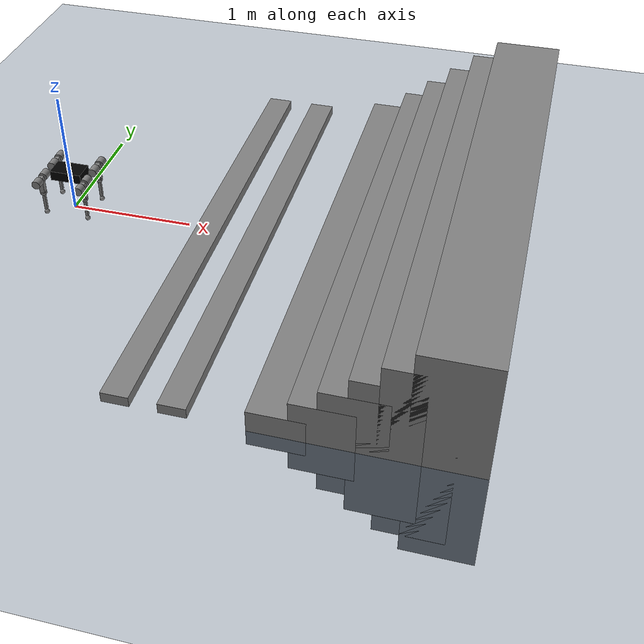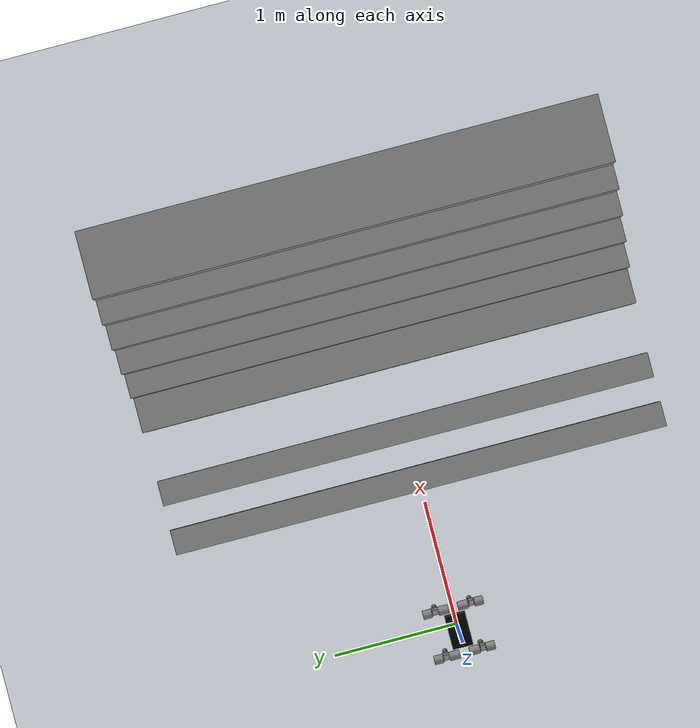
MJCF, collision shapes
<mujoco model="dogo scene">
  <include file="dogo.xml"/>

  <statistic center="0 0 0.1" extent="0.8"/>

  <visual>
    <headlight diffuse="0.6 0.6 0.6" ambient="0.3 0.3 0.3" specular="0 0 0"/>
    <rgba haze="0.15 0.25 0.35 1"/>
    <global azimuth="-130" elevation="-20"/>
  </visual>

  <asset>
    <texture type="skybox" builtin="gradient" rgb1="0.3 0.5 0.7" rgb2="0 0 0" width="512" height="3072"/>
    <texture type="2d" name="groundplane" builtin="checker" mark="edge" rgb1="0.2 0.3 0.4" rgb2="0.1 0.2 0.3"
      markrgb="0.8 0.8 0.8" width="300" height="300"/>
    <material name="groundplane" texture="groundplane" texuniform="true" texrepeat="5 5" reflectance="0.2"/>
  </asset>

  <worldbody>
    <light pos="0 0 1.5" dir="0 0 -1" directional="true"/>
    <geom name="floor" size="0 0 0.05" type="plane" material="groundplane"/>

    <geom pos="1.2 0 0.04" type="box"  size="0.1 2 0.04" quat="1.0 0 0 0"/>
    <geom pos="1.6 0 0.04" type="box"  size="0.1 2 0.04" quat="1.0 0 0 0"/>

    <geom pos="2.3 0 0.02" type="box"  size="0.2 2 0.15" quat="1.0 0 0 0"/>
    <geom pos="2.6 0 0.02" type="box"  size="0.22 2 0.3" quat="1.0 0 0 0"/>
    <geom pos="2.8 0 0.02" type="box"  size="0.23 2 0.45" quat="1.0 0 0 0"/>
    <geom pos="3 0 0.02" type="box"  size="0.24 2 0.6" quat="1.0 0 0 0"/>
    <geom pos="3.2 0 0.02" type="box"  size="0.25 2 0.75" quat="1.0 0 0 0"/>
    <geom pos="3.4 0 0.02" type="box"  size="0.26 2 0.9" quat="1.0 0 0 0"/>
  </worldbody>
</mujoco>

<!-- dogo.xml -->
<mujoco model="dogo">
  <compiler angle="radian" meshdir="assets" autolimits="true" />

  <option cone="elliptic" impratio="100" />

  <default>
    <default class="dogo">
      <geom friction="0.4" margin="0.001" condim="1"/>
      <joint axis="0 1 0" damping="0.1" armature="0.01" frictionloss="0.2"/>
      <motor ctrlrange="-23.7 23.7"/>
      <default class="abduction">
        <joint axis="0 1 0" range="-1.570796326795 1.570796326795"/>
      </default>
      <default class="hip">
          <joint axis="0 0 1" range="-3.14 3.14"/>
      </default>
      <default class="knee">
        <default class="left_knee">
          <joint axis="0 0 1" range="-2.5307274153919 -0.83776"/>
        </default>
        <default class="right_knee">
          <joint axis="0 0 1" range="0.83776 2.5307274153919 "/>
        </default>
      </default>
      <default class="visual">
        <geom type="mesh" contype="0" conaffinity="0" group="2"/>
      </default>
      <default class="collision">
        <geom group="3"/>
        <default class="foot">
          <geom size="0.02" type="sphere" priority="1" condim="6"
            friction="0.68 0.02 0.1"/>
        </default>
      </default>
    </default>
  </default>

  <asset>
    <material name="metal" rgba=".9 .95 .95 1" />
    <material name="black" rgba="0 0 0 1" />
    <material name="white" rgba="1 1 1 1" />
    <material name="gray" rgba="0.671705 0.692426 0.774270 1" />

    <mesh file="base_link.STL" />
    <mesh file="LEG11.STL" />
    <mesh file="LEG12.STL" />
    <mesh file="LEG13.STL" />
    <mesh file="LEG21.STL" />
    <mesh file="LEG22.STL" />
    <mesh file="LEG23.STL" />
    <mesh file="LEG31.STL" />
    <mesh file="LEG32.STL" />
    <mesh file="LEG33.STL" />
    <mesh file="LEG41.STL" />
    <mesh file="LEG42.STL" />
    <mesh file="LEG43.STL" />
    <mesh file="foot.obj" />
  </asset>

  <worldbody>
    <body name="base_link" pos="0 0 0.335" childclass="dogo">
      <inertial pos="0 0 0"
        mass="6.921"
        diaginertia="0.107027 0.0980771 0.0244531" />
      <freejoint />
      <geom mesh="base_link" material="gray" class="visual" />
      <geom size="0.13 0.08 0.04" type="box" material="black" class="collision" />
      <site name="imu" pos="-0.02557 0 0.04232" />

      <body name="FL_hip" pos="0.18 0.08 0" euler="-1.57079633 0 -1.57079633">
        <inertial pos="-0.000000 -0.003703 0.004706" quat="0.2357022 0.4714045 -0.4714045 -0.7071069"
          mass="0.30135684166799"
          diaginertia="0.00031237713005535 0.00027822467993044 0.00020168338836961" />
        <joint name="FL_hip_joint" class="abduction" />
        <geom mesh="LEG11" material="metal" class="visual" />
        <geom size="0.035 0.04" pos="0 0 -0.005" type="cylinder" class="collision" />

        <body name="FL_thigh" pos="0 0 -0.002" euler="0 0 -3.14159265" >
          <inertial pos="0.019829 -0.000000 0.095155" quat="-0.2358914 0.2358914 0.2358914 -0.9127243"
            mass="0.47454500868766"
            diaginertia="0.00074414565483716 0.0012540229261377 0.000758753104644" />
          <joint name="FL_thigh_joint" class="hip" />
          <geom mesh="LEG12" material="gray" class="visual" />
          <geom size="0.02 0.02 0.07" pos="0.05 0 0.065" euler="0 -1.57079633 0"
            type="box" class="collision" />
          <geom size="0.035 0.035" pos="0.0 0 0.125" type="cylinder" class="collision" />

          <body name="FL_calf" pos="0.128 0 0.060">
            <inertial pos="0.085586 -0.000000 0.002392"
              quat="-0.2358914 0.2358914 0.2358914 -0.9127243"
              mass="0.15980953360372"
              diaginertia="2.4624100003828e-05 0.00077656913624133 0.0007860837906668" />
            <joint name="FL_calf_joint" class="left_knee" />
            <geom mesh="LEG13" material="gray" class="visual" />
            <geom size="0.025 0.0115" pos="0 0 0.0016"
              type="cylinder" class="collision" />
            <geom size="0.08 0.011 0.011" pos="0.08 0 0.0016"
              type="box" class="collision" />
            <body name="FL_foot" pos="0.187 0 0.002" >
              <geom name="FL" class="foot" pos="0.0 0 0.0008" />
            </body>
          </body>
        </body>
      </body>

      <body name="FR_hip" pos="0.18 -0.08 0" euler="1.57079633 0 1.57079633">
        <inertial pos="0.000000 -0.003703 -0.004706" quat="0.2357022 0.4714045 -0.4714045 -0.7071069"
          mass="0.30135684166799"
          diaginertia="0.00031237713005535 0.00027822467993044 0.00020168338836961" />
        <joint name="FR_hip_joint" class="abduction" />
        <geom mesh="LEG21" material="metal" class="visual" />
        <geom size="0.035 0.04" pos="0 0 0"  type="cylinder" class="collision" />

        <body name="FR_thigh" pos="0 0 0.002" euler="0 0 3.14159265">
          <inertial pos="0.019829 -0.000000 0.095155" quat="-0.2358914 0.2358914 -0.2358914 -0.9127243"
            mass="0.47454500868766"
            diaginertia="0.00074414565483716 0.0012540229261377 0.000758753104644" />
          <joint name="FR_thigh_joint" class="hip" />
          <geom mesh="LEG22" material="gray" class="visual" />
          <geom size="0.02 0.02 0.07" pos="0.05 0 0.065" euler="0 -1.57079633 0" type="box" class="collision" />
          <geom size="0.035 0.035" pos="0.0 0 0.125" type="cylinder" class="collision" />

          <body name="FR_calf" pos="0.128 0 0.065">
            <inertial pos="0.085586 0.000000 -0.002392"
              quat="0.2358914 0.2358914 -0.2358914 -0.9127243"
              mass="0.15980953360372"
              diaginertia="2.4624100003828e-05 0.00077656913624133 0.0007860837906668" />
            <joint name="FR_calf_joint" class="right_knee" />
            <geom mesh="LEG23" material="gray" class="visual" />
            <geom size="0.025 0.0115" pos="0 0 -0.0016"
              type="cylinder" class="collision" />
            <geom size="0.08 0.011 0.011" pos="0.08 0 -0.0016"
              type="box" class="collision" />
            <body name="FR_foot" pos="0.187 0 -0.002" >
              <geom name="FR" class="foot" pos="0.0 0 -0.0008"/>
            </body>
          </body>
        </body>
      </body>

      <body name="RL_hip" pos="-0.18 0.08 0" euler="-1.57079633 0 -1.57079633">
        <inertial pos="-0.000000 -0.003703 -0.004706" quat="0.2357022 0.4714045 0.4714045 -0.7071069"
          mass="0.30135684166799"
          diaginertia="0.00031237713005535 0.00027822467993044 0.00020168338836961" />
        <joint name="RL_hip_joint" class="abduction" />
        <geom mesh="LEG31" material="metal" class="visual" />
        <geom size="0.035 0.04" pos="0 0 0"  type="cylinder" class="collision" />

        <body name="RL_thigh" pos="0 0 0.002" euler="0 0 3.14159265">
          <inertial pos="0.019829 -0.000000 0.095155" quat="-0.2358914 0.2358914 0.2358914 -0.9127243"
            mass="0.47454500868766"
            diaginertia="0.00074414565483715 0.0012540229261377 0.000758753104644" />
          <joint name="RL_thigh_joint" class="hip" />
          <geom mesh="LEG32" material="gray" class="visual" />
          <geom size="0.02 0.02 0.07" pos="0.05 0 0.065" euler="0 -1.57079633 0" type="box" class="collision" />
          <geom size="0.035 0.035" pos="0.0 0 0.125" type="cylinder" class="collision" />

          <body name="RL_calf" pos="0.128 0 0.065">
            <inertial pos="0.085586 -0.000000 -0.000000"
              quat="-0.2358914 0.2358914 0.2358914 -0.9127243"
              mass="0.15980953360372"
              diaginertia="2.4624100003828e-05 0.00077656913624133 0.0007860837906668" />
            <joint name="RL_calf_joint" class="left_knee" />
            <geom mesh="LEG33" material="gray" class="visual" />
            <geom size="0.025 0.0115" pos="0 0 -0.0016"
              type="cylinder" class="collision" />
            <geom size="0.08 0.011 0.011" pos="0.08 0 -0.0016"
              type="box" class="collision" />
            <body name="RL_foot" pos="0.187 0 -0.002" >
              <geom name="RL" class="foot" pos="0.0 0 0.0015"/>
            </body>
          </body>
        </body>
      </body>

      <body name="RR_hip" pos="-0.18 -0.08 0" euler="1.57079633 0 -1.57079633">
        <inertial pos="0.000000 -0.003703 -0.004706" quat="0.2357022 0.4714045 -0.4714045 -0.7071069"
          mass="0.30135684166799"
          diaginertia="0.00031237713005535 0.00027822467993044 0.00020168338836961" />
        <joint name="RR_hip_joint" class="abduction" />
        <geom mesh="LEG21" material="metal" class="visual" />
        <geom size="0.035 0.04" pos="0 0 0"  type="cylinder" class="collision" />

        <body name="RR_thigh" pos="0 0 0.002" euler="0 0 0">
          <inertial pos="0.019829 -0.000000 0.095155" quat="-0.2358914 0.2358914 -0.2358914 -0.9127243"
            mass="0.47454500868766"
            diaginertia="0.00074414565483716 0.0012540229261377 0.000758753104644" />
          <joint name="RR_thigh_joint" class="hip" />
          <geom mesh="LEG22" material="gray" class="visual" />
          <geom size="0.02 0.02 0.07" pos="0.05 0 0.065" euler="0 -1.57079633 0" type="box" class="collision" />
          <geom size="0.035 0.035" pos="0.0 0 0.125" type="cylinder" class="collision" />

          <body name="RR_calf" pos="0.128 0 0.065">
            <inertial pos="0.085586 0.000000 -0.002392"
              quat="0.2358914 0.2358914 -0.2358914 -0.9127243"
              mass="0.15980953360372"
              diaginertia="2.4624100003828e-05 0.00077656913624133 0.0007860837906668" />
            <joint name="RR_calf_joint" class="right_knee" />
            <geom mesh="LEG23" material="gray" class="visual" />
            <geom size="0.025 0.0115" pos="0 0 -0.0016"
              type="cylinder" class="collision" />
            <geom size="0.08 0.011 0.011" pos="0.08 0 -0.0016"
              type="box" class="collision" />
            <body name="RR_foot" pos="0.187 0 -0.002" >
              <geom name="RR" class="foot" pos="0.0 0 -0.0008"/>
            </body>
          </body>
        </body>
      </body>
    </body>
  </worldbody>

  <actuator>
    <motor class="abduction" name="FR_hip" joint="FR_hip_joint" />
    <motor class="hip" name="FR_thigh" joint="FR_thigh_joint" />
    <motor class="knee" name="FR_calf" joint="FR_calf_joint" />
    <motor class="abduction" name="FL_hip" joint="FL_hip_joint" />
    <motor class="hip" name="FL_thigh" joint="FL_thigh_joint" />
    <motor class="knee" name="FL_calf" joint="FL_calf_joint" />
    <motor class="abduction" name="RR_hip" joint="RR_hip_joint" />
    <motor class="hip" name="RR_thigh" joint="RR_thigh_joint" />
    <motor class="knee" name="RR_calf" joint="RR_calf_joint" />
    <motor class="abduction" name="RL_hip" joint="RL_hip_joint" />
    <motor class="hip" name="RL_thigh" joint="RL_thigh_joint" />
    <motor class="knee" name="RL_calf" joint="RL_calf_joint" />
  </actuator>

  <sensor>
    <jointpos name="FR_hip_pos" joint="FR_hip_joint" />
    <jointpos name="FR_thigh_pos" joint="FR_thigh_joint" />
    <jointpos name="FR_calf_pos" joint="FR_calf_joint" />
    <jointpos name="FL_hip_pos" joint="FL_hip_joint" />
    <jointpos name="FL_thigh_pos" joint="FL_thigh_joint" />
    <jointpos name="FL_calf_pos" joint="FL_calf_joint" />
    <jointpos name="RR_hip_pos" joint="RR_hip_joint" />
    <jointpos name="RR_thigh_pos" joint="RR_thigh_joint" />
    <jointpos name="RR_calf_pos" joint="RR_calf_joint" />
    <jointpos name="RL_hip_pos" joint="RL_hip_joint" />
    <jointpos name="RL_thigh_pos" joint="RL_thigh_joint" />
    <jointpos name="RL_calf_pos" joint="RL_calf_joint" />

    <jointvel name="FR_hip_vel" joint="FR_hip_joint" />
    <jointvel name="FR_thigh_vel" joint="FR_thigh_joint" />
    <jointvel name="FR_calf_vel" joint="FR_calf_joint" />
    <jointvel name="FL_hip_vel" joint="FL_hip_joint" />
    <jointvel name="FL_thigh_vel" joint="FL_thigh_joint" />
    <jointvel name="FL_calf_vel" joint="FL_calf_joint" />
    <jointvel name="RR_hip_vel" joint="RR_hip_joint" />
    <jointvel name="RR_thigh_vel" joint="RR_thigh_joint" />
    <jointvel name="RR_calf_vel" joint="RR_calf_joint" />
    <jointvel name="RL_hip_vel" joint="RL_hip_joint" />
    <jointvel name="RL_thigh_vel" joint="RL_thigh_joint" />
    <jointvel name="RL_calf_vel" joint="RL_calf_joint" />

    <jointactuatorfrc name="FR_hip_torque" joint="FR_hip_joint" noise="0.01" />
    <jointactuatorfrc name="FR_thigh_torque" joint="FR_thigh_joint" noise="0.01" />
    <jointactuatorfrc name="FR_calf_torque" joint="FR_calf_joint" noise="0.01" />
    <jointactuatorfrc name="FL_hip_torque" joint="FL_hip_joint" noise="0.01" />
    <jointactuatorfrc name="FL_thigh_torque" joint="FL_thigh_joint" noise="0.01" />
    <jointactuatorfrc name="FL_calf_torque" joint="FL_calf_joint" noise="0.01" />
    <jointactuatorfrc name="RR_hip_torque" joint="RR_hip_joint" noise="0.01" />
    <jointactuatorfrc name="RR_thigh_torque" joint="RR_thigh_joint" noise="0.01" />
    <jointactuatorfrc name="RR_calf_torque" joint="RR_calf_joint" noise="0.01" />
    <jointactuatorfrc name="RL_hip_torque" joint="RL_hip_joint" noise="0.01" />
    <jointactuatorfrc name="RL_thigh_torque" joint="RL_thigh_joint" noise="0.01" />
    <jointactuatorfrc name="RL_calf_torque" joint="RL_calf_joint" noise="0.01" />

  </sensor>

  <keyframe>
    <key name="home" qpos="0 0 0.27 1 0 0 0 0 0.9 -1.8 0 0.9 -1.8 0 0.9 -1.8 0 0.9 -1.8"
      ctrl="" />
  </keyframe>
</mujoco>
